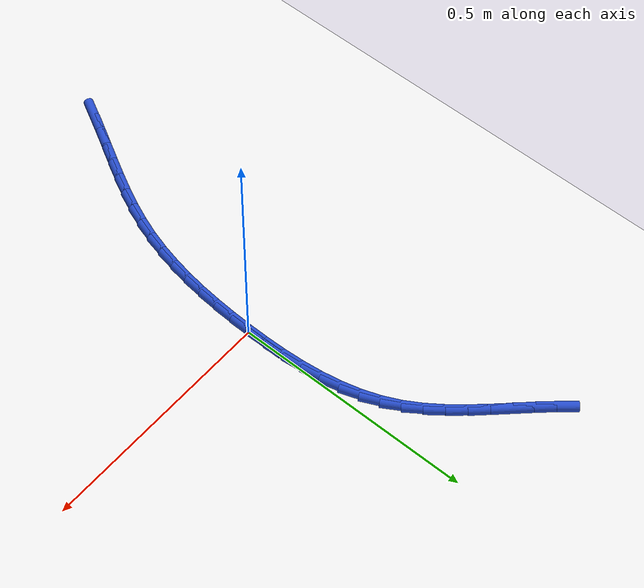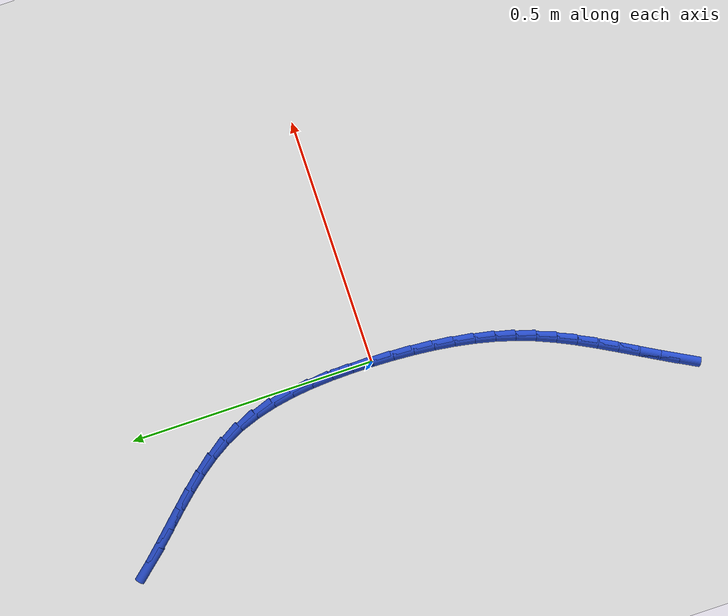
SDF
<sdf version="1.6">
 <world name="default">
  <model name="ground_plane">
   <static>1</static>
   <link name="link">
    <collision name="collision">
     <geometry><plane><normal>0 0 1</normal><size>100 100</size></plane></geometry>
     <surface><friction><ode><mu>100</mu><mu2>50</mu2></ode></friction></surface>
    </collision>
    <visual name="visual">
     <cast_shadows>0</cast_shadows>
     <geometry><plane><normal>0 0 1</normal><size>100 100</size></plane></geometry>
     <material>
      <script><uri>file://media/materials/scripts/gazebo.material</uri><name>Gazebo/WhiteGlow</name></script>
     </material>
    </visual>
   </link>
  </model>
  <model name="line">
   <link name="link_0">
    <pose>-2.42861286636753e-17 2.0816681711721685e-17 0.01 0 1.57 1.5620864987343244</pose>
    <collision name="collision">
     <geometry><cylinder><radius>0.01</radius><length>0.08</length></cylinder></geometry>
    </collision>
    <visual name="visual">
     <material>
      <script><name>Gazebo/Blue</name><uri>file://media/materials/scripts/gazebo.material</uri></script>
     </material>
     <geometry><cylinder><radius>0.01</radius><length>0.08</length></cylinder></geometry>
    </visual>
   </link>
   <link name="link_1">
    <pose>0.00037207546715301747 0.042717956753290175 0.01 0 1.57 -1.547647721185586</pose>
    <collision name="collision">
     <geometry><cylinder><radius>0.01</radius><length>0.08</length></cylinder></geometry>
    </collision>
    <visual name="visual">
     <material>
      <script><name>Gazebo/Blue</name><uri>file://media/materials/scripts/gazebo.material</uri></script>
     </material>
     <geometry><cylinder><radius>0.01</radius><length>0.08</length></cylinder></geometry>
    </visual>
   </link>
   <link name="link_2">
    <pose>-0.000616630045460906 0.0854215615011634 0.01 0 1.57 -1.5065132838567732</pose>
    <collision name="collision">
     <geometry><cylinder><radius>0.01</radius><length>0.08</length></cylinder></geometry>
    </collision>
    <visual name="visual">
     <material>
      <script><name>Gazebo/Blue</name><uri>file://media/materials/scripts/gazebo.material</uri></script>
     </material>
     <geometry><cylinder><radius>0.01</radius><length>0.08</length></cylinder></geometry>
    </visual>
   </link>
   <link name="link_3">
    <pose>-0.0033436973060621744 0.12778591979551154 0.01 0 1.57 -1.4551755909871809</pose>
    <collision name="collision">
     <geometry><cylinder><radius>0.01</radius><length>0.08</length></cylinder></geometry>
    </collision>
    <visual name="visual">
     <material>
      <script><name>Gazebo/Blue</name><uri>file://media/materials/scripts/gazebo.material</uri></script>
     </material>
     <geometry><cylinder><radius>0.01</radius><length>0.08</length></cylinder></geometry>
    </visual>
   </link>
   <link name="link_4">
    <pose>-0.008186707082871177 0.16948613718822653 0.01 0 1.57 -1.392500677713814</pose>
    <collision name="collision">
     <geometry><cylinder><radius>0.01</radius><length>0.08</length></cylinder></geometry>
    </collision>
    <visual name="visual">
     <material>
      <script><name>Gazebo/Blue</name><uri>file://media/materials/scripts/gazebo.material</uri></script>
     </material>
     <geometry><cylinder><radius>0.01</radius><length>0.08</length></cylinder></geometry>
    </visual>
   </link>
   <link name="link_5">
    <pose>-0.015523240144108285 0.2101973192312003 0.01 0 1.57 -1.3172760069311842</pose>
    <collision name="collision">
     <geometry><cylinder><radius>0.01</radius><length>0.08</length></cylinder></geometry>
    </collision>
    <visual name="visual">
     <material>
      <script><name>Gazebo/Blue</name><uri>file://media/materials/scripts/gazebo.material</uri></script>
     </material>
     <geometry><cylinder><radius>0.01</radius><length>0.08</length></cylinder></geometry>
    </visual>
   </link>
   <link name="link_6">
    <pose>-0.025730877257993875 0.24959457147632452 0.01 0 1.57 -1.2284497367976805</pose>
    <collision name="collision">
     <geometry><cylinder><radius>0.01</radius><length>0.08</length></cylinder></geometry>
    </collision>
    <visual name="visual">
     <material>
      <script><name>Gazebo/Blue</name><uri>file://media/materials/scripts/gazebo.material</uri></script>
     </material>
     <geometry><cylinder><radius>0.01</radius><length>0.08</length></cylinder></geometry>
    </visual>
   </link>
   <link name="link_7">
    <pose>-0.03918719919274836 0.2873529994754913 0.01 0 1.57 -1.1258658671360646</pose>
    <collision name="collision">
     <geometry><cylinder><radius>0.01</radius><length>0.08</length></cylinder></geometry>
    </collision>
    <visual name="visual">
     <material>
      <script><name>Gazebo/Blue</name><uri>file://media/materials/scripts/gazebo.material</uri></script>
     </material>
     <geometry><cylinder><radius>0.01</radius><length>0.08</length></cylinder></geometry>
    </visual>
   </link>
   <link name="link_8">
    <pose>-0.05625864762224866 0.32315587455591566 0.01 0 1.57 -1.0234908410081385</pose>
    <collision name="collision">
     <geometry><cylinder><radius>0.01</radius><length>0.08</length></cylinder></geometry>
    </collision>
    <visual name="visual">
     <material>
      <script><name>Gazebo/Blue</name><uri>file://media/materials/scripts/gazebo.material</uri></script>
     </material>
     <geometry><cylinder><radius>0.01</radius><length>0.08</length></cylinder></geometry>
    </visual>
   </link>
   <link name="link_9">
    <pose>-0.07688356958069109 0.3570002928978009 0.01 0 1.57 -0.9403648433385308</pose>
    <collision name="collision">
     <geometry><cylinder><radius>0.01</radius><length>0.08</length></cylinder></geometry>
    </collision>
    <visual name="visual">
     <material>
      <script><name>Gazebo/Blue</name><uri>file://media/materials/scripts/gazebo.material</uri></script>
     </material>
     <geometry><cylinder><radius>0.01</radius><length>0.08</length></cylinder></geometry>
    </visual>
   </link>
   <link name="link_10">
    <pose>-0.10044704179031617 0.38928893850754065 0.01 0 1.57 -0.8783027276906727</pose>
    <collision name="collision">
     <geometry><cylinder><radius>0.01</radius><length>0.08</length></cylinder></geometry>
    </collision>
    <visual name="visual">
     <material>
      <script><name>Gazebo/Blue</name><uri>file://media/materials/scripts/gazebo.material</uri></script>
     </material>
     <geometry><cylinder><radius>0.01</radius><length>0.08</length></cylinder></geometry>
    </visual>
   </link>
   <link name="link_11">
    <pose>-0.12629744926571834 0.4204513931115435 0.01 0 1.57 -0.8367771793753681</pose>
    <collision name="collision">
     <geometry><cylinder><radius>0.01</radius><length>0.08</length></cylinder></geometry>
    </collision>
    <visual name="visual">
     <material>
      <script><name>Gazebo/Blue</name><uri>file://media/materials/scripts/gazebo.material</uri></script>
     </material>
     <geometry><cylinder><radius>0.01</radius><length>0.08</length></cylinder></geometry>
    </visual>
   </link>
   <link name="link_12">
    <pose>-0.1537831770214921 0.45091723843621834 0.01 0 1.57 -0.8148669827680531</pose>
    <collision name="collision">
     <geometry><cylinder><radius>0.01</radius><length>0.08</length></cylinder></geometry>
    </collision>
    <visual name="visual">
     <material>
      <script><name>Gazebo/Blue</name><uri>file://media/materials/scripts/gazebo.material</uri></script>
     </material>
     <geometry><cylinder><radius>0.01</radius><length>0.08</length></cylinder></geometry>
    </visual>
   </link>
   <link name="link_13">
    <pose>-0.18225261007223195 0.48111605620797343 0.01 0 1.57 -0.8117573754514157</pose>
    <collision name="collision">
     <geometry><cylinder><radius>0.01</radius><length>0.08</length></cylinder></geometry>
    </collision>
    <visual name="visual">
     <material>
      <script><name>Gazebo/Blue</name><uri>file://media/materials/scripts/gazebo.material</uri></script>
     </material>
     <geometry><cylinder><radius>0.01</radius><length>0.08</length></cylinder></geometry>
    </visual>
   </link>
   <link name="link_14">
    <pose>-0.2110541334325323 0.5114774281532175 0.01 0 1.57 -0.8269572624084032</pose>
    <collision name="collision">
     <geometry><cylinder><radius>0.01</radius><length>0.08</length></cylinder></geometry>
    </collision>
    <visual name="visual">
     <material>
      <script><name>Gazebo/Blue</name><uri>file://media/materials/scripts/gazebo.material</uri></script>
     </material>
     <geometry><cylinder><radius>0.01</radius><length>0.08</length></cylinder></geometry>
    </visual>
   </link>
   <link name="link_15">
    <pose>-0.2395361321169877 0.5424309359983592 0.01 0 1.57 -0.8603066581623194</pose>
    <collision name="collision">
     <geometry><cylinder><radius>0.01</radius><length>0.08</length></cylinder></geometry>
    </collision>
    <visual name="visual">
     <material>
      <script><name>Gazebo/Blue</name><uri>file://media/materials/scripts/gazebo.material</uri></script>
     </material>
     <geometry><cylinder><radius>0.01</radius><length>0.08</length></cylinder></geometry>
    </visual>
   </link>
   <link name="link_185">
    <pose>-0.18713591331722282 -0.5804209538168995 0.01 0 1.57 1.0762986954763085</pose>
    <collision name="collision">
     <geometry><cylinder><radius>0.01</radius><length>0.08</length></cylinder></geometry>
    </collision>
    <visual name="visual">
     <material>
      <script><name>Gazebo/Blue</name><uri>file://media/materials/scripts/gazebo.material</uri></script>
     </material>
     <geometry><cylinder><radius>0.01</radius><length>0.08</length></cylinder></geometry>
    </visual>
   </link>
   <link name="link_186">
    <pose>-0.1671218171100799 -0.5433013977797344 0.01 0 1.57 1.0626316893828167</pose>
    <collision name="collision">
     <geometry><cylinder><radius>0.01</radius><length>0.08</length></cylinder></geometry>
    </collision>
    <visual name="visual">
     <material>
      <script><name>Gazebo/Blue</name><uri>file://media/materials/scripts/gazebo.material</uri></script>
     </material>
     <geometry><cylinder><radius>0.01</radius><length>0.08</length></cylinder></geometry>
    </visual>
   </link>
   <link name="link_187">
    <pose>-0.1467572979299843 -0.506737142823894 0.01 0 1.57 1.060446826721043</pose>
    <collision name="collision">
     <geometry><cylinder><radius>0.01</radius><length>0.08</length></cylinder></geometry>
    </collision>
    <visual name="visual">
     <material>
      <script><name>Gazebo/Blue</name><uri>file://media/materials/scripts/gazebo.material</uri></script>
     </material>
     <geometry><cylinder><radius>0.01</radius><length>0.08</length></cylinder></geometry>
    </visual>
   </link>
   <link name="link_188">
    <pose>-0.12647020473048348 -0.47049839094318474 0.01 0 1.57 1.0700129003899232</pose>
    <collision name="collision">
     <geometry><cylinder><radius>0.01</radius><length>0.08</length></cylinder></geometry>
    </collision>
    <visual name="visual">
     <material>
      <script><name>Gazebo/Blue</name><uri>file://media/materials/scripts/gazebo.material</uri></script>
     </material>
     <geometry><cylinder><radius>0.01</radius><length>0.08</length></cylinder></geometry>
    </visual>
   </link>
   <link name="link_189">
    <pose>-0.10668838646512503 -0.4343553441314129 0.01 0 1.57 1.091611644313428</pose>
    <collision name="collision">
     <geometry><cylinder><radius>0.01</radius><length>0.08</length></cylinder></geometry>
    </collision>
    <visual name="visual">
     <material>
      <script><name>Gazebo/Blue</name><uri>file://media/materials/scripts/gazebo.material</uri></script>
     </material>
     <geometry><cylinder><radius>0.01</radius><length>0.08</length></cylinder></geometry>
    </visual>
   </link>
   <link name="link_190">
    <pose>-0.08783969208745646 -0.3980782043823854 0.01 0 1.57 1.1254962412246419</pose>
    <collision name="collision">
     <geometry><cylinder><radius>0.01</radius><length>0.08</length></cylinder></geometry>
    </collision>
    <visual name="visual">
     <material>
      <script><name>Gazebo/Blue</name><uri>file://media/materials/scripts/gazebo.material</uri></script>
     </material>
     <geometry><cylinder><radius>0.01</radius><length>0.08</length></cylinder></geometry>
    </visual>
   </link>
   <link name="link_191">
    <pose>-0.0703519705510253 -0.3614371736899084 0.01 0 1.57 1.1717921123227784</pose>
    <collision name="collision">
     <geometry><cylinder><radius>0.01</radius><length>0.08</length></cylinder></geometry>
    </collision>
    <visual name="visual">
     <material>
      <script><name>Gazebo/Blue</name><uri>file://media/materials/scripts/gazebo.material</uri></script>
     </material>
     <geometry><cylinder><radius>0.01</radius><length>0.08</length></cylinder></geometry>
    </visual>
   </link>
   <link name="link_192">
    <pose>-0.054653070809379416 -0.3242024540477897 0.01 0 1.57 1.2297364526484529</pose>
    <collision name="collision">
     <geometry><cylinder><radius>0.01</radius><length>0.08</length></cylinder></geometry>
    </collision>
    <visual name="visual">
     <material>
      <script><name>Gazebo/Blue</name><uri>file://media/materials/scripts/gazebo.material</uri></script>
     </material>
     <geometry><cylinder><radius>0.01</radius><length>0.08</length></cylinder></geometry>
    </visual>
   </link>
   <link name="link_193">
    <pose>-0.04114899415307686 -0.286155280126301 0.01 0 1.57 1.2897672495741763</pose>
    <collision name="collision">
     <geometry><cylinder><radius>0.01</radius><length>0.08</length></cylinder></geometry>
    </collision>
    <visual name="visual">
     <material>
      <script><name>Gazebo/Blue</name><uri>file://media/materials/scripts/gazebo.material</uri></script>
     </material>
     <geometry><cylinder><radius>0.01</radius><length>0.08</length></cylinder></geometry>
    </visual>
   </link>
   <link name="link_194">
    <pose>-0.029916303313045275 -0.2472432471371632 0.01 0 1.57 1.3445242630420309</pose>
    <collision name="collision">
     <geometry><cylinder><radius>0.01</radius><length>0.08</length></cylinder></geometry>
    </collision>
    <visual name="visual">
     <material>
      <script><name>Gazebo/Blue</name><uri>file://media/materials/scripts/gazebo.material</uri></script>
     </material>
     <geometry><cylinder><radius>0.01</radius><length>0.08</length></cylinder></geometry>
    </visual>
   </link>
   <link name="link_195">
    <pose>-0.020776656901131656 -0.20754267228297235 0.01 0 1.57 1.3937133105847523</pose>
    <collision name="collision">
     <geometry><cylinder><radius>0.01</radius><length>0.08</length></cylinder></geometry>
    </collision>
    <visual name="visual">
     <material>
      <script><name>Gazebo/Blue</name><uri>file://media/materials/scripts/gazebo.material</uri></script>
     </material>
     <geometry><cylinder><radius>0.01</radius><length>0.08</length></cylinder></geometry>
    </visual>
   </link>
   <link name="link_196">
    <pose>-0.013545080881240774 -0.1671332221341221 0.01 0 1.57 1.4373672333060294</pose>
    <collision name="collision">
     <geometry><cylinder><radius>0.01</radius><length>0.08</length></cylinder></geometry>
    </collision>
    <visual name="visual">
     <material>
      <script><name>Gazebo/Blue</name><uri>file://media/materials/scripts/gazebo.material</uri></script>
     </material>
     <geometry><cylinder><radius>0.01</radius><length>0.08</length></cylinder></geometry>
    </visual>
   </link>
   <link name="link_197">
    <pose>-0.008036601217277402 -0.12609456326100613 0.01 0 1.57 1.4756164305268462</pose>
    <collision name="collision">
     <geometry><cylinder><radius>0.01</radius><length>0.08</length></cylinder></geometry>
    </collision>
    <visual name="visual">
     <material>
      <script><name>Gazebo/Blue</name><uri>file://media/materials/scripts/gazebo.material</uri></script>
     </material>
     <geometry><cylinder><radius>0.01</radius><length>0.08</length></cylinder></geometry>
    </visual>
   </link>
   <link name="link_198">
    <pose>-0.004066243873146308 -0.08450636223401801 0.01 0 1.57 1.5086480113649445</pose>
    <collision name="collision">
     <geometry><cylinder><radius>0.01</radius><length>0.08</length></cylinder></geometry>
    </collision>
    <visual name="visual">
     <material>
      <script><name>Gazebo/Blue</name><uri>file://media/materials/scripts/gazebo.material</uri></script>
     </material>
     <geometry><cylinder><radius>0.01</radius><length>0.08</length></cylinder></geometry>
    </visual>
   </link>
   <link name="link_199">
    <pose>-0.0014490348127522612 -0.04244828562355145 0.01 0 1.57 1.5366731029284668</pose>
    <collision name="collision">
     <geometry><cylinder><radius>0.01</radius><length>0.08</length></cylinder></geometry>
    </collision>
    <visual name="visual">
     <material>
      <script><name>Gazebo/Blue</name><uri>file://media/materials/scripts/gazebo.material</uri></script>
     </material>
     <geometry><cylinder><radius>0.01</radius><length>0.08</length></cylinder></geometry>
    </visual>
   </link>
   <link name="link_200">
    <pose>-3.0791341698588326e-17 -5.551115123125783e-17 0.01 0 1.57 1.5599022917216872</pose>
    <collision name="collision">
     <geometry><cylinder><radius>0.01</radius><length>0.08</length></cylinder></geometry>
    </collision>
    <visual name="visual">
     <material>
      <script><name>Gazebo/Blue</name><uri>file://media/materials/scripts/gazebo.material</uri></script>
     </material>
     <geometry><cylinder><radius>0.01</radius><length>0.08</length></cylinder></geometry>
    </visual>
   </link>
   <link name="link_201">
    <pose>0.0004658346012056166 0.04275882806624351 0.01 0 1.57 1.5599022917216874</pose>
    <collision name="collision">
     <geometry><cylinder><radius>0.01</radius><length>0.08</length></cylinder></geometry>
    </collision>
    <visual name="visual">
     <material>
      <script><name>Gazebo/Blue</name><uri>file://media/materials/scripts/gazebo.material</uri></script>
     </material>
     <geometry><cylinder><radius>0.01</radius><length>0.08</length></cylinder></geometry>
    </visual>
   </link>
  </model>
 </world>
</sdf>
